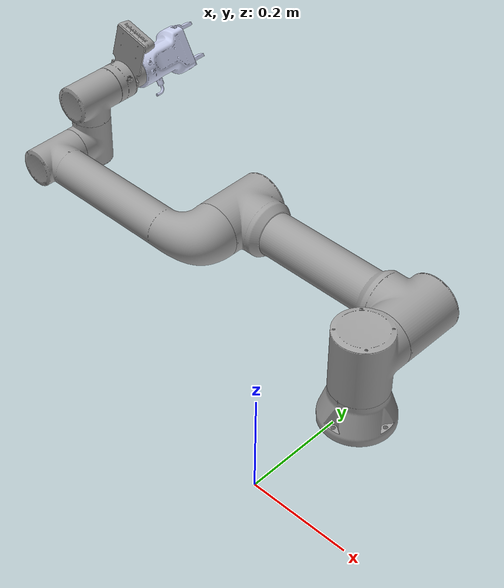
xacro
<?xml version="1.0"?>
<robot xmlns:xacro="http://www.ros.org/wiki/xacro" name="robot">
    <xacro:arg name="initial_positions_file" default="initial_positions.yaml" />

    <!-- Import robot urdf file -->
    <xacro:include filename="$(find fairino_description)/urdf/robot.urdf" />

    <!-- Import control_xacro -->
    <xacro:include filename="robot.ros2_control.xacro" />

    <xacro:robot_ros2_control name="FakeSystem" initial_positions_file="$(arg initial_positions_file)"/>

</robot>

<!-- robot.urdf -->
<!-- |    This document was autogenerated by xacro from robot.xacro                    | -->
<!-- |    EDITING THIS FILE BY HAND IS NOT RECOMMENDED                                 | -->
<robot name="robot">
  <material name="silver_default">
    <color rgba="0.700 0.700 0.700 1.000"/>
  </material>
  <material name="steel_satin">
    <color rgba="0.6274509803921569 0.6274509803921569 0.6274509803921569 1.0"/>
  </material>
  <material name="opaque202209238">
    <color rgba="0.792156862745098 0.8196078431372549 0.9333333333333333 1.0"/>
  </material>
  <transmission name="Revolute 1_tran">
    <type>transmission_interface/SimpleTransmission</type>
    <joint name="Revolute 1">
      <hardwareInterface>hardware_interface/EffortJointInterface</hardwareInterface>
    </joint>
    <actuator name="Revolute 1_actr">
      <hardwareInterface>hardware_interface/EffortJointInterface</hardwareInterface>
      <mechanicalReduction>1</mechanicalReduction>
    </actuator>
  </transmission>
  <transmission name="Revolute 2_tran">
    <type>transmission_interface/SimpleTransmission</type>
    <joint name="Revolute 2">
      <hardwareInterface>hardware_interface/EffortJointInterface</hardwareInterface>
    </joint>
    <actuator name="Revolute 2_actr">
      <hardwareInterface>hardware_interface/EffortJointInterface</hardwareInterface>
      <mechanicalReduction>1</mechanicalReduction>
    </actuator>
  </transmission>
  <transmission name="Revolute 3_tran">
    <type>transmission_interface/SimpleTransmission</type>
    <joint name="Revolute 3">
      <hardwareInterface>hardware_interface/EffortJointInterface</hardwareInterface>
    </joint>
    <actuator name="Revolute 3_actr">
      <hardwareInterface>hardware_interface/EffortJointInterface</hardwareInterface>
      <mechanicalReduction>1</mechanicalReduction>
    </actuator>
  </transmission>
  <transmission name="Revolute 4_tran">
    <type>transmission_interface/SimpleTransmission</type>
    <joint name="Revolute 4">
      <hardwareInterface>hardware_interface/EffortJointInterface</hardwareInterface>
    </joint>
    <actuator name="Revolute 4_actr">
      <hardwareInterface>hardware_interface/EffortJointInterface</hardwareInterface>
      <mechanicalReduction>1</mechanicalReduction>
    </actuator>
  </transmission>
  <transmission name="Revolute 5_tran">
    <type>transmission_interface/SimpleTransmission</type>
    <joint name="Revolute 5">
      <hardwareInterface>hardware_interface/EffortJointInterface</hardwareInterface>
    </joint>
    <actuator name="Revolute 5_actr">
      <hardwareInterface>hardware_interface/EffortJointInterface</hardwareInterface>
      <mechanicalReduction>1</mechanicalReduction>
    </actuator>
  </transmission>
  <transmission name="Revolute 6_tran">
    <type>transmission_interface/SimpleTransmission</type>
    <joint name="Revolute 6">
      <hardwareInterface>hardware_interface/EffortJointInterface</hardwareInterface>
    </joint>
    <actuator name="Revolute 6_actr">
      <hardwareInterface>hardware_interface/EffortJointInterface</hardwareInterface>
      <mechanicalReduction>1</mechanicalReduction>
    </actuator>
  </transmission>
  <transmission name="Slider 1_tran">
    <type>transmission_interface/SimpleTransmission</type>
    <joint name="Slider 1">
      <hardwareInterface>hardware_interface/EffortJointInterface</hardwareInterface>
    </joint>
    <actuator name="Slider 1_actr">
      <hardwareInterface>hardware_interface/EffortJointInterface</hardwareInterface>
      <mechanicalReduction>1</mechanicalReduction>
    </actuator>
  </transmission>
  <transmission name="Slider 2_tran">
    <type>transmission_interface/SimpleTransmission</type>
    <joint name="Slider 2">
      <hardwareInterface>hardware_interface/EffortJointInterface</hardwareInterface>
    </joint>
    <actuator name="Slider 2_actr">
      <hardwareInterface>hardware_interface/EffortJointInterface</hardwareInterface>
      <mechanicalReduction>1</mechanicalReduction>
    </actuator>
  </transmission>
  <link name="base_link">
    <inertial>
      <origin rpy="0 0 0" xyz="-0.00031896 -0.00029673 0.042463"/>
      <mass value="4.70564595000992"/>
      <inertia ixx="0.00896516751489845" ixy="4.46364236603196e-05" ixz="5.61567585525384e-05" iyy="0.00896220397399733" iyz="5.20939082328063e-05" izz="0.0131440888158387"/>
    </inertial>
    <visual>
      <origin rpy="0 0 0" xyz="0 0 0"/>
      <geometry>
        <mesh filename="package://fairino_description/meshes/robot/base_link.stl" scale="0.001 0.001 0.001"/>
      </geometry>
      <material name="steel_satin"/>
    </visual>
    <collision>
      <origin rpy="0 0 0" xyz="0 0 0"/>
      <geometry>
        <mesh filename="package://fairino_description/meshes/robot/base_link.stl" scale="0.001 0.001 0.001"/>
      </geometry>
    </collision>
  </link>
  <link name="shoulder_link_2">
    <inertial>
      <origin rpy="0 0 0" xyz="5.0029E-07 -0.0040922 0.14629"/>
      <mass value="12.7283506221967"/>
      <inertia ixx="0.0324904484945794" ixy="2.9798628576367e-06" ixz="-3.41772232162537e-06" iyy="0.0315475447637031" iyz="-0.000294139937735305" izz="0.0237922630744243"/>
    </inertial>
    <visual>
      <origin rpy="0 0 0" xyz="0.0 -0.267926 -0.038498"/>
      <geometry>
        <mesh filename="package://fairino_description/meshes/robot/shoulder_link_2.stl" scale="0.001 0.001 0.001"/>
      </geometry>
      <material name="steel_satin"/>
    </visual>
    <collision>
      <origin rpy="0 0 0" xyz="0.0 -0.267926 -0.038498"/>
      <geometry>
        <mesh filename="package://fairino_description/meshes/robot/shoulder_link_2.stl" scale="0.001 0.001 0.001"/>
      </geometry>
    </collision>
  </link>
  <link name="upper_arm_link_2">
    <inertial>
      <origin rpy="0 0 0" xyz="-0.21250012898842047 0.07360475590734333 0.0003612005833610321"/>
      <mass value="42.0398618310652"/>
      <inertia ixx="0.0825681577757269" ixy="-1.2086265029243e-05" ixz="0.00211347784823412" iyy="1.30774152325306" iyz="8.31519637589651e-08" izz="1.3256534581236"/>
    </inertial>
    <visual>
      <origin rpy="0 0 0" xyz="1e-06 -0.328926 -0.115498"/>
      <geometry>
        <mesh filename="package://fairino_description/meshes/robot/upper_arm_link_2.stl" scale="0.001 0.001 0.001"/>
      </geometry>
      <material name="steel_satin"/>
    </visual>
    <collision>
      <origin rpy="0 0 0" xyz="1e-06 -0.328926 -0.115498"/>
      <geometry>
        <mesh filename="package://fairino_description/meshes/robot/upper_arm_link_2.stl" scale="0.001 0.001 0.001"/>
      </geometry>
    </collision>
  </link>
  <link name="forearm_link_2">
    <inertial>
      <origin rpy="0 0 0" xyz="-0.18795274195672013 -0.05437139246485462 0.00032082476189168596"/>
      <mass value="22.3137778025039"/>
      <inertia ixx="0.0249984950748972" ixy="-0.0209482427463521" ixz="0.00080817149669965" iyy="0.49377177426436" iyz="3.6299527768735e-05" izz="0.497422741993761"/>
    </inertial>
    <visual>
      <origin rpy="0 0 0" xyz="0.425 -0.328922 -0.11622"/>
      <geometry>
        <mesh filename="package://fairino_description/meshes/robot/forearm_link_2.stl" scale="0.001 0.001 0.001"/>
      </geometry>
      <material name="steel_satin"/>
    </visual>
    <collision>
      <origin rpy="0 0 0" xyz="0.425 -0.328922 -0.11622"/>
      <geometry>
        <mesh filename="package://fairino_description/meshes/robot/forearm_link_2.stl" scale="0.001 0.001 0.001"/>
      </geometry>
    </collision>
  </link>
  <link name="wrist1_link_2">
    <inertial>
      <origin rpy="0 0 0" xyz="-0.0001623194796800398 0.04385616645953977 0.00357481467536655"/>
      <mass value="4.73072450729012"/>
      <inertia ixx="0.00651118171882425" ixy="-4.45596692877359e-09" ixz="1.67633378067578e-07" iyy="0.00601458309153635" iyz="-8.73148118376299e-05" izz="0.00449640552053454"/>
    </inertial>
    <visual>
      <origin rpy="0 0 0" xyz="0.819999 -0.320918 -0.116892"/>
      <geometry>
        <mesh filename="package://fairino_description/meshes/robot/wrist1_link_2.stl" scale="0.001 0.001 0.001"/>
      </geometry>
      <material name="steel_satin"/>
    </visual>
    <collision>
      <origin rpy="0 0 0" xyz="0.819999 -0.320918 -0.116892"/>
      <geometry>
        <mesh filename="package://fairino_description/meshes/robot/wrist1_link_2.stl" scale="0.001 0.001 0.001"/>
      </geometry>
    </collision>
  </link>
  <link name="wrist2_link_2">
    <inertial>
      <origin rpy="0 0 0" xyz="-1.1492915712452145e-06 0.0038439701529248693 0.041258475474200085"/>
      <mass value="4.59893412947406"/>
      <inertia ixx="0.00622417118545315" ixy="-1.24489037522935e-07" ixz="-4.01152260298687e-08" iyy="0.00421128358018796" iyz="-6.60474609134876e-05" izz="0.00592002627851462"/>
    </inertial>
    <visual>
      <origin rpy="0 0 0" xyz="0.820161 -0.369718 -0.17373"/>
      <geometry>
        <mesh filename="package://fairino_description/meshes/robot/wrist2_link_2.stl" scale="0.001 0.001 0.001"/>
      </geometry>
      <material name="steel_satin"/>
    </visual>
    <collision>
      <origin rpy="0 0 0" xyz="0.820161 -0.369718 -0.17373"/>
      <geometry>
        <mesh filename="package://fairino_description/meshes/robot/wrist2_link_2.stl" scale="0.001 0.001 0.001"/>
      </geometry>
    </collision>
  </link>
  <link name="wrist3_link_2">
    <inertial>
      <origin rpy="0 0 0" xyz="-4.027825194841128e-05 0.019599888775950813 -8.410472660033697e-05"/>
      <mass value="1.53640343262628"/>
      <inertia ixx="0.000819398114710768" ixy="1.40371541390572e-07" ixz="2.56514879226621e-07" iyy="0.00120600149355399" iyz="1.53328688287657e-06" izz="0.000820555620170582"/>
    </inertial>
    <visual>
      <origin rpy="0 0 0" xyz="0.820161 -0.426718 -0.21873"/>
      <geometry>
        <mesh filename="package://fairino_description/meshes/robot/wrist3_link_2.stl" scale="0.001 0.001 0.001"/>
      </geometry>
      <material name="steel_satin"/>
    </visual>
    <collision>
      <origin rpy="0 0 0" xyz="0.820161 -0.426718 -0.21873"/>
      <geometry>
        <mesh filename="package://fairino_description/meshes/robot/wrist3_link_2.stl" scale="0.001 0.001 0.001"/>
      </geometry>
    </collision>
  </link>
  <link name="Component13_1">
    <inertial>
      <origin rpy="0 0 0" xyz="0.017607979307471155 0.0154966681769797 0.000389258431443662"/>
      <mass value="0.0660407714432898"/>
      <inertia ixx="1.28482922721468e-05" ixy="-1.83587694291276e-06" ixz="-1.26956573195253e-06" iyy="4.92961852464197e-06" iyz="-5.9527466607194e-07" izz="1.31224794575613e-05"/>
    </inertial>
    <visual>
      <origin rpy="0 0 0" xyz="0.858624 -0.630018 -0.24954"/>
      <geometry>
        <mesh filename="package://fairino_description/meshes/robot/Component13_1.stl" scale="0.001 0.001 0.001"/>
      </geometry>
      <material name="opaque202209238"/>
    </visual>
    <collision>
      <origin rpy="0 0 0" xyz="0.858624 -0.630018 -0.24954"/>
      <geometry>
        <mesh filename="package://fairino_description/meshes/robot/Component13_1.stl" scale="0.001 0.001 0.001"/>
      </geometry>
    </collision>
  </link>
  <link name="Component14_1">
    <inertial>
      <origin rpy="0 0 0" xyz="-0.01799352603252946 0.015496668168988093 0.0002780208608467727"/>
      <mass value="0.0660407714432901"/>
      <inertia ixx="1.28482914657606e-05" ixy="1.83587748646408e-06" ixz="-1.26956623060399e-06" iyy="4.92961740998499e-06" iyz="5.95273711167382e-07" izz="1.31224791512091e-05"/>
    </inertial>
    <visual>
      <origin rpy="0 0 0" xyz="0.78212 -0.630018 -0.18803"/>
      <geometry>
        <mesh filename="package://fairino_description/meshes/robot/Component14_1.stl" scale="0.001 0.001 0.001"/>
      </geometry>
      <material name="opaque202209238"/>
    </visual>
    <collision>
      <origin rpy="0 0 0" xyz="0.78212 -0.630018 -0.18803"/>
      <geometry>
        <mesh filename="package://fairino_description/meshes/robot/Component14_1.stl" scale="0.001 0.001 0.001"/>
      </geometry>
    </collision>
  </link>
  <link name="camera_mount_v4_1">
    <inertial>
      <origin rpy="0 0 0" xyz="0.017734464321493837 0.0001058994732428542 0.06618595154703602"/>
      <mass value="0.239842236423316"/>
      <inertia ixx="0.000281628769416689" ixy="4.51898245934501e-07" ixz="-3.90991677825872e-05" iyy="0.00042719088748755" iyz="1.68648354562789e-06" izz="0.000146193988814353"/>
    </inertial>
    <visual>
      <origin rpy="0 0 0" xyz="0.820161 -0.463718 -0.21873"/>
      <geometry>
        <mesh filename="package://fairino_description/meshes/robot/camera_mount_v4_1.stl" scale="0.001 0.001 0.001"/>
      </geometry>
      <material name="steel_satin"/>
    </visual>
    <collision>
      <origin rpy="0 0 0" xyz="0.820161 -0.463718 -0.21873"/>
      <geometry>
        <mesh filename="package://fairino_description/meshes/robot/camera_mount_v4_1.stl" scale="0.001 0.001 0.001"/>
      </geometry>
    </collision>
  </link>
  <link name="IntelRealsense_D435_Multibody_v1_1">
    <inertial>
      <origin rpy="0 0 0" xyz="-0.023195305092852392 0.011951132118777685 0.006152564065467381"/>
      <mass value="0.351321315810254"/>
      <inertia ixx="4.55703549741143e-05" ixy="7.21040605028422e-07" ixz="4.91455636263682e-05" iyy="0.000226860233237203" iyz="-2.03920104337174e-07" izz="0.000215797377550508"/>
    </inertial>
    <visual>
      <origin rpy="0 0 0" xyz="0.770193 -0.465718 -0.318279"/>
      <geometry>
        <mesh filename="package://fairino_description/meshes/robot/IntelRealsense_D435_Multibody_v1_1.stl" scale="0.001 0.001 0.001"/>
      </geometry>
      <material name="steel_satin"/>
    </visual>
    <collision>
      <origin rpy="0 0 0" xyz="0.770193 -0.465718 -0.318279"/>
      <geometry>
        <mesh filename="package://fairino_description/meshes/robot/IntelRealsense_D435_Multibody_v1_1.stl" scale="0.001 0.001 0.001"/>
      </geometry>
    </collision>
  </link>
  <link name="tool_changer_v1_1">
    <inertial>
      <origin rpy="0 0 0" xyz="-0.006395180069047157 0.015999659199221916 -0.024167731977817103"/>
      <mass value="0.754641971318803"/>
      <inertia ixx="0.000249699893652949" ixy="1.737499033538370e-14" ixz="2.831068712794149e-15" iyy="0.000370607557518721" iyz="-4.121702978920894e-15" izz="0.000249699893637434"/>
    </inertial>
    <visual>
      <origin rpy="0 0 0" xyz="0.813902 -0.469718 -0.242933"/>
      <geometry>
        <mesh filename="package://fairino_description/meshes/robot/tool_changer_v1_1.stl" scale="0.001 0.001 0.001"/>
      </geometry>
      <material name="steel_satin"/>
    </visual>
    <collision>
      <origin rpy="0 0 0" xyz="0.813902 -0.469718 -0.242933"/>
      <geometry>
        <mesh filename="package://fairino_description/meshes/robot/tool_changer_v1_1.stl" scale="0.001 0.001 0.001"/>
      </geometry>
    </collision>
  </link>
  <link name="RG75-300-0L_1">
    <inertial>
      <origin rpy="0 0 0" xyz="-0.006346877118321048 0.06537729430616601 -0.02436151887397306"/>
      <mass value="4.50915434771721"/>
      <inertia ixx="0.00858599528108694" ixy="1.39993206271782e-05" ixz="0.000342896569381357" iyy="0.00351662774478134" iyz="-2.42458742938378e-05" izz="0.0082696569225531"/>
    </inertial>
    <visual>
      <origin rpy="0 0 0" xyz="0.813902 -0.501718 -0.242933"/>
      <geometry>
        <mesh filename="package://fairino_description/meshes/robot/RG75-300-0L_1.stl" scale="0.001 0.001 0.001"/>
      </geometry>
      <material name="opaque202209238"/>
    </visual>
    <collision>
      <origin rpy="0 0 0" xyz="0.813902 -0.501718 -0.242933"/>
      <geometry>
        <mesh filename="package://fairino_description/meshes/robot/RG75-300-0L_1.stl" scale="0.001 0.001 0.001"/>
      </geometry>
    </collision>
  </link>
  <joint name="Revolute 1" type="revolute">
    <origin rpy="0 0 0" xyz="0.0 0.267926 0.038498"/>
    <parent link="base_link"/>
    <child link="shoulder_link_2"/>
    <axis xyz="-0.0 0.0 1.0"/>
    <limit lower="-3.14" upper="3.14" effort="150" velocity="1.5"/>
  </joint>
  <joint name="Revolute 2" type="revolute">
    <origin rpy="0 0 0" xyz="-1e-06 0.061 0.077"/>
    <parent link="shoulder_link_2"/>
    <child link="upper_arm_link_2"/>
    <axis xyz="-1e-05 1.0 -0.0"/>
    <limit lower="-3.14" upper="3.14" effort="150" velocity="1.5"/>
  </joint>
  <joint name="Revolute 3" type="revolute">
    <origin rpy="0 0 0" xyz="-0.424999 -4e-06 0.000722"/>
    <parent link="upper_arm_link_2"/>
    <child link="forearm_link_2"/>
    <axis xyz="-1e-05 1.0 -0.0"/>
    <limit lower="-3.14" upper="3.14" effort="150" velocity="1.5"/>
  </joint>
  <joint name="Revolute 4" type="revolute">
    <origin rpy="0 0 0" xyz="-0.394999 -0.008004 0.000672"/>
    <parent link="forearm_link_2"/>
    <child link="wrist1_link_2"/>
    <axis xyz="1e-05 -1.0 0.0"/>
    <limit lower="-3.14" upper="3.14" effort="150" velocity="1.5"/>
  </joint>
  <joint name="Revolute 5" type="revolute">
    <origin rpy="0 0 0" xyz="-0.000162 0.0488 0.056838"/>
    <parent link="wrist1_link_2"/>
    <child link="wrist2_link_2"/>
    <axis xyz="-4e-06 -0.0 -1.0"/>
    <limit lower="-3.14" upper="3.14" effort="150" velocity="1.5"/>
  </joint>
  <joint name="Revolute 6" type="revolute">
    <origin rpy="0 0 0" xyz="0.0 0.057 0.045"/>
    <parent link="wrist2_link_2"/>
    <child link="wrist3_link_2"/>
    <axis xyz="-0.0 -1.0 0.0"/>
    <limit lower="-3.14" upper="3.14" effort="150" velocity="1.5"/>
  </joint>
  <joint name="Slider 1" type="prismatic">
    <origin rpy="0 0 0" xyz="-0.044722 0.1283 0.006607"/>
    <parent link="RG75-300-0L_1"/>
    <child link="Component13_1"/>
    <axis xyz="0.499997 -0.0 -0.866027"/>
    <limit effort="100" lower="0.0" upper="0.0" velocity="100"/>
  </joint>
  <joint name="Slider 2" type="prismatic">
    <origin rpy="0 0 0" xyz="0.031782 0.1283 -0.054903"/>
    <parent link="RG75-300-0L_1"/>
    <child link="Component14_1"/>
    <axis xyz="-0.499997 0.0 0.866027"/>
    <limit effort="100" lower="0.0" upper="0.0" velocity="100"/>
  </joint>
  <joint name="Rigid 16" type="fixed">
    <origin rpy="0 0 0" xyz="0.0 0.037 0.0"/>
    <parent link="wrist3_link_2"/>
    <child link="camera_mount_v4_1"/>
  </joint>
  <joint name="Rigid 17" type="fixed">
    <origin rpy="0 0 0" xyz="0.049968 0.002 0.099549"/>
    <parent link="camera_mount_v4_1"/>
    <child link="IntelRealsense_D435_Multibody_v1_1"/>
  </joint>
  <joint name="Rigid 19" type="fixed">
    <origin rpy="0 0 0" xyz="0.006259 0.043 0.024203"/>
    <parent link="wrist3_link_2"/>
    <child link="tool_changer_v1_1"/>
  </joint>
  <joint name="Rigid 20" type="fixed">
    <origin rpy="0 0 0" xyz="0.0 0.032 0.0"/>
    <parent link="tool_changer_v1_1"/>
    <child link="RG75-300-0L_1"/>
  </joint>
</robot>
